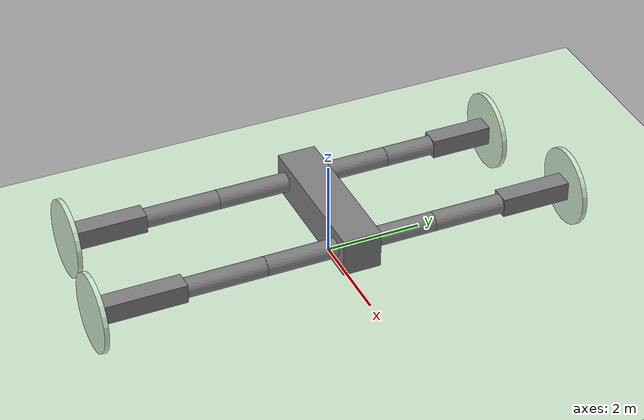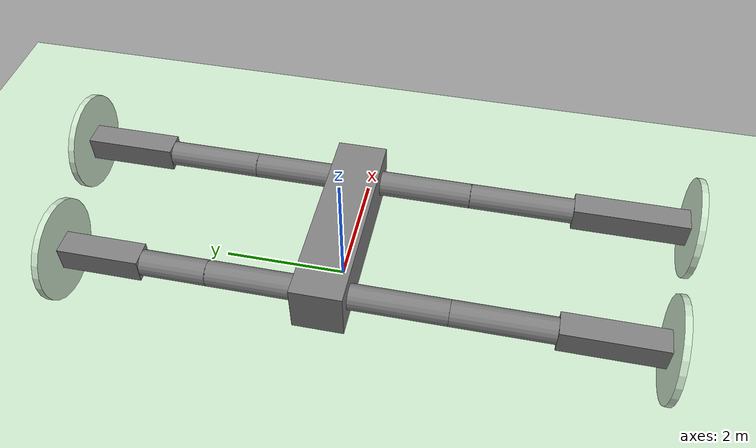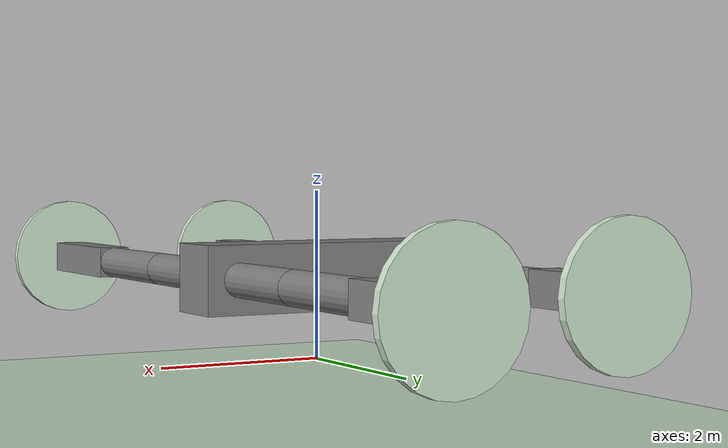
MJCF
<mujoco model="robot">
	<compiler coordinate="local" angle="degree" inertiafromgeom="true"/>
	<option timestep="0.01" impratio="1" integrator="RK4"/>
	<default>
		<default class="/">
			<geom conaffinity="0" condim="3" friction="1 0.5 0.5" density="1" margin="0.01"/>
			<default class="leg">
				<joint type="hinge" limited="true" range="-90 90" armature="1" damping="10" frictionloss="25"/>
				<motor ctrlrange="-1 1" forcerange="-1 1" gear="1"/>
				<position ctrlrange="-10 10" forcerange="-300 300" gear="6.37" kp="200" kv="1"/>
			</default>
			<default class="wheel">
				<joint type="hinge" limited="false" armature="1" damping="0.3" frictionloss="0"/>
				<geom type="cylinder" size="0.8" material="MatPlane" rgba="0.8 0.9 0.8 1" friction="1 0.005 0.5" fromto="0 -0.05 0 0 0.05 0"/>
				<motor ctrlrange="-1 1" forcerange="-150 150" gear="100"/>
				<velocity ctrlrange="-10 10" forcerange="-150 150" gear="1" kv="150"/>
			</default>
			<default class="propl">
				<mesh scale="0.01 0.01 0.01"/>
				<general ctrlrange="0 1" gear="0 50 0 0 0 0"/>
				<motor ctrlrange="0 10" gear="0 0 0 0 0 100"/>
			</default>
			<default class="propr">
				<mesh scale="0.01 0.01 0.01"/>
				<general ctrlrange="0 1" gear="0 -50 0 0 0 0"/>
				<motor ctrlrange="0 10" gear="0 0 0 0 0 100"/>
			</default>
		</default>
	</default>
	<asset>
		<texture name="texplane" type="2d" builtin="checker" rgb1="0 0 0" rgb2="1 1 1" width="100" height="100"/>
		<material name="MatPlane" class="/" texture="texplane" texrepeat="60 60" specular="1" shininess="1" reflectance="0.5"/>
	</asset>
	<worldbody>
		<light name="//unnamed_light_0" class="/" directional="true" pos="-0.5 0.5 3" dir="0 0 -1"/>
		<geom name="floor" class="/" type="plane" conaffinity="1" condim="3" size="100 100 100" material="MatPlane" rgba="0.8 0.9 0.8 1" pos="0 0 -1"/>
		<body name="torso" pos="0 0 1">
			<joint name="root" class="/" type="free" pos="0 0 0" limited="false" margin="0.01" armature="0" damping="0"/>
			<geom name="torso_geom" class="/" type="box" size="1.6 0.4 0.4" pos="0 0 0"/>
			<body name="lf_leg1" pos="1.2 1.05 0">
				<geom name="lf_leg1_geom" class="/" type="capsule" size="0.2" fromto="0 -0.654 0 0 0.654 0" pos="0 0 0"/>
				<joint name="lf_leg1_Joint_x" class="leg" pos="0 -0.654 0" axis="1 0 0"/>
				<joint name="lf_leg1_Joint_z" class="leg" pos="0 -0.654 0" axis="0 0 1"/>
				<body name="lf_leg2" pos="0 1.4 0">
					<geom name="lf_leg2_geom" class="/" type="capsule" size="0.2" fromto="0 -0.747 0 0 0.747 0" pos="0 0 0"/>
					<joint name="lf_leg2_Joint_x" class="leg" pos="0 -0.747 0" axis="1 0 0"/>
					<joint name="lf_leg2_Joint_z" class="leg" pos="0 -0.747 0" axis="0 0 1"/>
					<body name="lf_leg3" pos="0 1.49 0">
						<geom name="lf_leg3_geom" class="/" type="box" size="0.2" fromto="0 -0.748 0 0 0.748 0" pos="0 0 0"/>
						<joint name="lf_leg3_Joint_x" class="leg" pos="0 -0.748 0" axis="1 0 0"/>
						<joint name="lf_leg3_Joint_z" class="leg" pos="0 -0.748 0" axis="0 0 1"/>
						<body name="lf_motor" pos="0 0.748 0">
							<geom name="lf_motor_geom" class="wheel" pos="0 0 0"/>
							<joint name="lf_motor_y" class="wheel" pos="0 -0.1 0" axis="0 1 0"/>
							<site name="thrust1" class="/" pos="0 0 0"/>
						</body>
					</body>
				</body>
			</body>
			<body name="rf_leg1" pos="1.2 -1.14 0">
				<geom name="rf_leg1_geom" class="/" type="capsule" size="0.2" fromto="0 -0.743 0 0 0.743 0" pos="0 0 0"/>
				<joint name="rf_leg1_Joint_x" class="leg" pos="0 0.743 0" axis="1 0 0"/>
				<joint name="rf_leg1_Joint_z" class="leg" pos="0 0.743 0" axis="0 0 1"/>
				<body name="rf_leg2" pos="0 -1.57 0">
					<geom name="rf_leg2_geom" class="/" type="capsule" size="0.2" fromto="0 -0.831 0 0 0.831 0" pos="0 0 0"/>
					<joint name="rf_leg2_Joint_x" class="leg" pos="0 0.831 0" axis="1 0 0"/>
					<joint name="rf_leg2_Joint_z" class="leg" pos="0 0.831 0" axis="0 0 1"/>
					<body name="rf_leg3" pos="0 -1.75 0">
						<geom name="rf_leg3_geom" class="/" type="box" size="0.2" fromto="0 -0.924 0 0 0.924 0" pos="0 0 0"/>
						<joint name="rf_leg3_Joint_x" class="leg" pos="0 0.924 0" axis="1 0 0"/>
						<joint name="rf_leg3_Joint_z" class="leg" pos="0 0.924 0" axis="0 0 1"/>
						<body name="rf_motor" pos="0 -0.924 0">
							<geom name="rf_motor_geom" class="wheel" pos="0 0 0"/>
							<joint name="rf_motor_y" class="wheel" pos="0 0.1 0" axis="0 1 0"/>
							<site name="thrust2" class="/" pos="0 0 0"/>
						</body>
					</body>
				</body>
			</body>
			<body name="lb_leg1" pos="-1.2 1.09 0">
				<geom name="lb_leg1_geom" class="/" type="capsule" size="0.2" fromto="0 -0.693 0 0 0.693 0" pos="0 0 0"/>
				<joint name="lb_leg1_Joint_x" class="leg" pos="0 -0.693 0" axis="1 0 0"/>
				<joint name="lb_leg1_Joint_z" class="leg" pos="0 -0.693 0" axis="0 0 1"/>
				<body name="lb_leg2" pos="0 1.21 0">
					<geom name="lb_leg2_geom" class="/" type="capsule" size="0.2" fromto="0 -0.518 0 0 0.518 0" pos="0 0 0"/>
					<joint name="lb_leg2_Joint_x" class="leg" pos="0 -0.518 0" axis="1 0 0"/>
					<joint name="lb_leg2_Joint_z" class="leg" pos="0 -0.518 0" axis="0 0 1"/>
					<body name="lb_leg3" pos="0 1.18 0">
						<geom name="lb_leg3_geom" class="/" type="box" size="0.2" fromto="0 -0.663 0 0 0.663 0" pos="0 0 0"/>
						<joint name="lb_leg3_Joint_x" class="leg" pos="0 -0.663 0" axis="1 0 0"/>
						<joint name="lb_leg3_Joint_z" class="leg" pos="0 -0.663 0" axis="0 0 1"/>
						<body name="lb_motor" pos="0 0.663 0">
							<geom name="lb_motor_geom" class="wheel" pos="0 0 0"/>
							<joint name="lb_motor_y" class="wheel" pos="0 -0.1 0" axis="0 1 0"/>
							<site name="thrust3" class="/" pos="0 0 0"/>
						</body>
					</body>
				</body>
			</body>
			<body name="rb_leg1" pos="-1.2 -1.15 0">
				<geom name="rb_leg1_geom" class="/" type="capsule" size="0.2" fromto="0 -0.749 0 0 0.749 0" pos="0 0 0"/>
				<joint name="rb_leg1_Joint_x" class="leg" pos="0 0.749 0" axis="1 0 0"/>
				<joint name="rb_leg1_Joint_z" class="leg" pos="0 0.749 0" axis="0 0 1"/>
				<body name="rb_leg2" pos="0 -1.53 0">
					<geom name="rb_leg2_geom" class="/" type="capsule" size="0.2" fromto="0 -0.778 0 0 0.778 0" pos="0 0 0"/>
					<joint name="rb_leg2_Joint_x" class="leg" pos="0 0.778 0" axis="1 0 0"/>
					<joint name="rb_leg2_Joint_z" class="leg" pos="0 0.778 0" axis="0 0 1"/>
					<body name="rb_leg3" pos="0 -1.58 0">
						<geom name="rb_leg3_geom" class="/" type="box" size="0.2" fromto="0 -0.805 0 0 0.805 0" pos="0 0 0"/>
						<joint name="rb_leg3_Joint_x" class="leg" pos="0 0.805 0" axis="1 0 0"/>
						<joint name="rb_leg3_Joint_z" class="leg" pos="0 0.805 0" axis="0 0 1"/>
						<body name="rb_motor" pos="0 -0.805 0">
							<geom name="rb_motor_geom" class="wheel" pos="0 0 0"/>
							<joint name="rb_motor_y" class="wheel" pos="0 0.1 0" axis="0 1 0"/>
							<site name="thrust4" class="/" pos="0 0 0"/>
						</body>
					</body>
				</body>
			</body>
		</body>
	</worldbody>
	<actuator>
		<position name="lf_leg1_motor_x" class="leg" joint="lf_leg1_Joint_x"/>
		<position name="lf_leg1_motor_z" class="leg" joint="lf_leg1_Joint_z"/>
		<position name="lf_leg2_motor_x" class="leg" joint="lf_leg2_Joint_x"/>
		<position name="lf_leg2_motor_z" class="leg" joint="lf_leg2_Joint_z"/>
		<position name="lf_leg3_motor_x" class="leg" joint="lf_leg3_Joint_x"/>
		<position name="lf_leg3_motor_z" class="leg" joint="lf_leg3_Joint_z"/>
		<position name="rf_leg1_motor_x" class="leg" joint="rf_leg1_Joint_x"/>
		<position name="rf_leg1_motor_z" class="leg" joint="rf_leg1_Joint_z"/>
		<position name="rf_leg2_motor_x" class="leg" joint="rf_leg2_Joint_x"/>
		<position name="rf_leg2_motor_z" class="leg" joint="rf_leg2_Joint_z"/>
		<position name="rf_leg3_motor_x" class="leg" joint="rf_leg3_Joint_x"/>
		<position name="rf_leg3_motor_z" class="leg" joint="rf_leg3_Joint_z"/>
		<position name="lb_leg1_motor_x" class="leg" joint="lb_leg1_Joint_x"/>
		<position name="lb_leg2_motor_x" class="leg" joint="lb_leg2_Joint_x"/>
		<position name="lb_leg3_motor_x" class="leg" joint="lb_leg3_Joint_x"/>
		<position name="rb_leg1_motor_x" class="leg" joint="rb_leg1_Joint_x"/>
		<position name="rb_leg2_motor_x" class="leg" joint="rb_leg2_Joint_x"/>
		<position name="rb_leg3_motor_x" class="leg" joint="rb_leg3_Joint_x"/>
		<position name="lb_leg1_motor_z" class="leg" joint="lb_leg1_Joint_z"/>
		<position name="lb_leg2_motor_z" class="leg" joint="lb_leg2_Joint_z"/>
		<position name="lb_leg3_motor_z" class="leg" joint="lb_leg3_Joint_z"/>
		<position name="rb_leg1_motor_z" class="leg" joint="rb_leg1_Joint_z"/>
		<position name="rb_leg2_motor_z" class="leg" joint="rb_leg2_Joint_z"/>
		<position name="rb_leg3_motor_z" class="leg" joint="rb_leg3_Joint_z"/>
		<velocity name="lf_motor" class="wheel" joint="lf_motor_y"/>
		<velocity name="rf_motor" class="wheel" joint="rf_motor_y"/>
		<velocity name="lb_motor" class="wheel" joint="lb_motor_y"/>
		<velocity name="rb_motor" class="wheel" joint="rb_motor_y"/>
		<general name="thrust_1" class="propl" site="thrust1"/>
		<general name="thrust_2" class="propr" site="thrust2"/>
		<general name="thrust_3" class="propl" site="thrust3"/>
		<general name="thrust_4" class="propr" site="thrust4"/>
	</actuator>
</mujoco>
